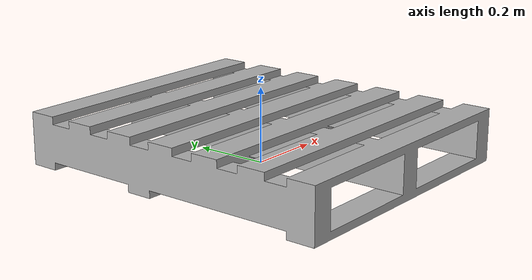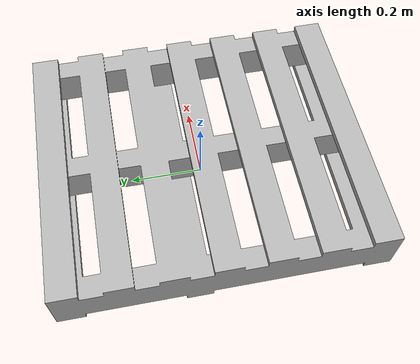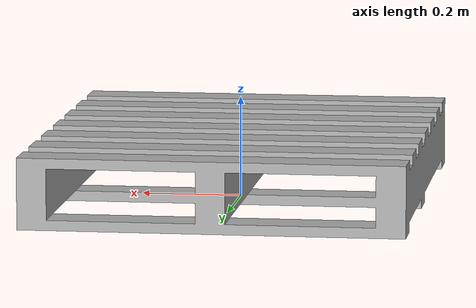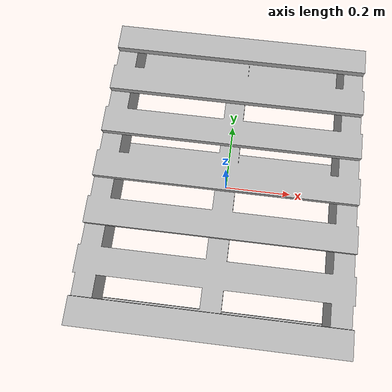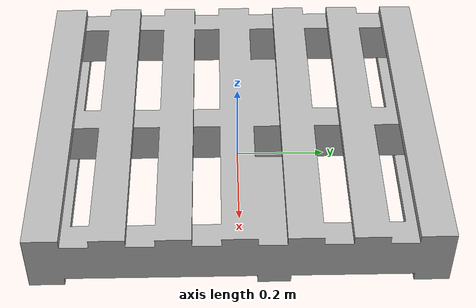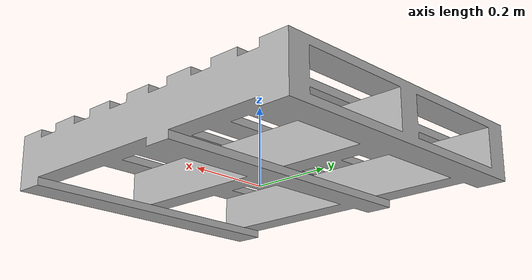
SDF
<?xml version='1.0'?>
<sdf version='1.6'>
  <model name='obstacle_pallet'>
    <static>1</static>
    <pose frame=''>0 0 0 0 -0 0</pose>
    <link name='Pallet'>
      <collision name='Pallet_Collision'>
        <geometry>
          <mesh>
            <uri>model://obstacle_pallet/pallet.dae</uri>
          </mesh>
        </geometry>
        <pose frame=''>0 0 -0.02 0 -0 0</pose>
      </collision>
      <visual name='Pallet_Visual'>
        <pose frame=''>0 0 -0.02 0 -0 0</pose>
        <geometry>
          <mesh>
            <uri>model://obstacle_pallet/pallet.dae</uri>
          </mesh>
        </geometry>
        <material>
          <script>
            <uri>model://obstacle_pallet/wood.material</uri>
            <name>Wood/1</name>
          </script>
          <ambient>1 1 1 1</ambient>
          <diffuse>0.7 0.7 0.7 1</diffuse>
          <specular>0 0 0 0</specular>
          <emissive>0 0 0 0</emissive>
        </material>
      </visual>
      <pose frame=''>-0.68 -0.74 0 0 -0 0</pose>
    </link>
  </model>
</sdf>
